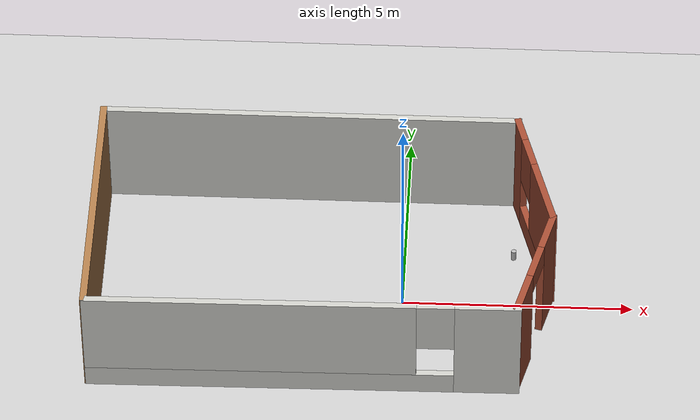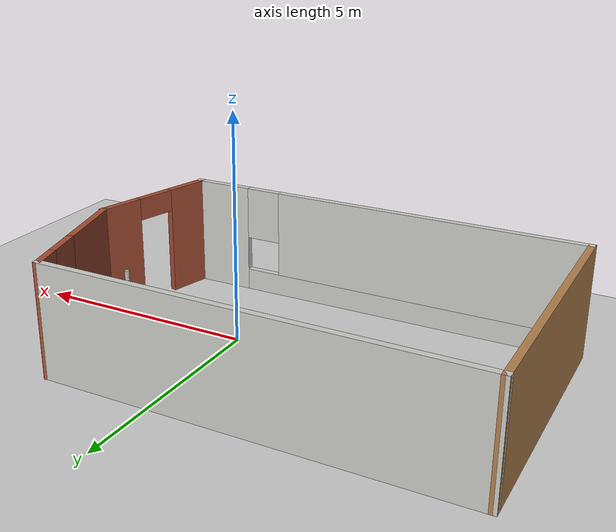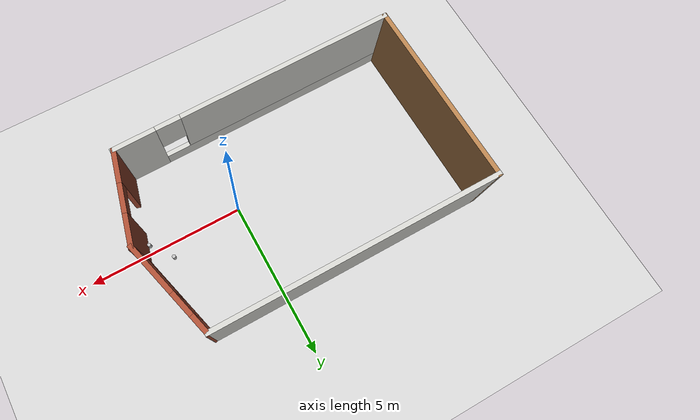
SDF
<sdf version="1.7">
 <world name="default">
  <light name="sun" type="directional">
   <pose>0 0 10 0 -0 0</pose>
   <diffuse>0.8 0.8 0.8 1</diffuse>
   <specular>0.2 0.2 0.2 1</specular>
   <attenuation>
    <range>1000</range>
    <constant>0.9</constant>
    <linear>0.01</linear>
    <quadratic>0.001</quadratic>
   </attenuation>
   <direction>-0.5 0.1 -0.9</direction>
   <spot><inner_angle>0</inner_angle><outer_angle>0</outer_angle><falloff>0</falloff></spot>
  </light>
  <model name="ground_plane">
   <static>1</static>
   <link name="link">
    <collision name="collision">
     <geometry><plane><normal>0 0 1</normal><size>100 100</size></plane></geometry>
     <surface>
      <contact><collide_bitmask>65535</collide_bitmask></contact>
      <friction><ode><mu>100</mu><mu2>50</mu2></ode></friction>
     </surface>
    </collision>
    <visual name="visual">
     <cast_shadows>0</cast_shadows>
     <geometry><plane><normal>0 0 1</normal><size>100 100</size></plane></geometry>
     <material>
      <script><uri>file://media/materials/scripts/gazebo.material</uri><name>Gazebo/Grey</name></script>
     </material>
    </visual>
   </link>
  </model>
  <gravity>0 0 -9.8</gravity>
  <magnetic_field>6e-06 2.3e-05 -4.2e-05</magnetic_field>
  <atmosphere type="adiabatic"/>
  <physics type="ode">
   <max_step_size>0.001</max_step_size>
   <real_time_factor>1</real_time_factor>
   <real_time_update_rate>1000</real_time_update_rate>
  </physics>
  <scene><ambient>0.4 0.4 0.4 1</ambient><background>0.7 0.7 0.7 1</background><shadows>1</shadows></scene>
  <spherical_coordinates>
   <surface_model>EARTH_WGS84</surface_model>
   <latitude_deg>0</latitude_deg>
   <longitude_deg>0</longitude_deg>
   <elevation>0</elevation>
   <heading_deg>0</heading_deg>
  </spherical_coordinates>
  <model name="world_">
   <pose>-1.74023 0.29335 0 0 -0 0</pose>
   <link name="Wall_3">
    <collision name="Wall_3_Collision">
     <geometry><box><size>6.02961 0.15 2.5</size></box></geometry>
     <pose>0 0 1.25 0 -0 0</pose>
    </collision>
    <visual name="Wall_3_Visual">
     <pose>0 0 1.25 0 -0 0</pose>
     <geometry><box><size>6.02961 0.15 2.5</size></box></geometry>
     <material>
      <script><uri>file://media/materials/scripts/gazebo.material</uri><name>Gazebo/Wood</name></script>
      <ambient>1 1 1 1</ambient>
     </material>
     <meta><layer>0</layer></meta>
    </visual>
    <pose>-4.90868 0.002084 0 0 -0 1.5879</pose>
   </link>
   <link name="Wall_5">
    <collision name="Wall_5_Collision">
     <geometry><box><size>9.25 0.15 2.5</size></box></geometry>
     <pose>0 0 1.25 0 -0 0</pose>
    </collision>
    <visual name="Wall_5_Visual">
     <pose>0 0 1.25 0 -0 0</pose>
     <geometry><box><size>9.25 0.15 2.5</size></box></geometry>
     <material>
      <script><uri>file://media/materials/scripts/gazebo.material</uri><name>Gazebo/CeilingTiled</name></script>
      <ambient>1 1 1 1</ambient>
     </material>
     <meta><layer>0</layer></meta>
    </visual>
    <pose>-0.408961 2.94146 0 0 -0 0</pose>
   </link>
   <link name="Wall_6">
    <pose>4.54221 1.44427 0 0 -0 -1.309</pose>
    <visual name="Wall_6_Visual_0">
     <pose>-1.27894 0 1.25 0 -0 0</pose>
     <geometry><box><size>0.692115 0.15 2.5</size></box></geometry>
     <material>
      <script><uri>file://media/materials/scripts/gazebo.material</uri><name>Gazebo/Bricks</name></script>
      <ambient>1 1 1 1</ambient>
     </material>
     <meta><layer>0</layer></meta>
    </visual>
    <collision name="Wall_6_Collision_0">
     <geometry><box><size>0.692115 0.15 2.5</size></box></geometry>
     <pose>-1.27894 0 1.25 0 -0 0</pose>
    </collision>
    <visual name="Wall_6_Visual_1">
     <pose>0.346057 0 0.25 0 -0 0</pose>
     <geometry><box><size>2.55789 0.15 0.5</size></box></geometry>
     <material>
      <script><uri>file://media/materials/scripts/gazebo.material</uri><name>Gazebo/Bricks</name></script>
      <ambient>1 1 1 1</ambient>
     </material>
     <meta><layer>0</layer></meta>
    </visual>
    <collision name="Wall_6_Collision_1">
     <geometry><box><size>2.55789 0.15 0.5</size></box></geometry>
     <pose>0.346057 0 0.25 0 -0 0</pose>
    </collision>
    <visual name="Wall_6_Visual_2">
     <pose>0.746057 0 1.5 0 -0 0</pose>
     <geometry><box><size>1.75788 0.15 2</size></box></geometry>
     <material>
      <script><uri>file://media/materials/scripts/gazebo.material</uri><name>Gazebo/Bricks</name></script>
      <ambient>1 1 1 1</ambient>
     </material>
     <meta><layer>0</layer></meta>
    </visual>
    <collision name="Wall_6_Collision_2">
     <geometry><box><size>1.75788 0.15 2</size></box></geometry>
     <pose>0.746057 0 1.5 0 -0 0</pose>
    </collision>
    <visual name="Wall_6_Visual_3">
     <pose>-0.532885 0 1.9 0 -0 0</pose>
     <geometry><box><size>0.8 0.15 1.2</size></box></geometry>
     <material>
      <script><uri>file://media/materials/scripts/gazebo.material</uri><name>Gazebo/Bricks</name></script>
      <ambient>1 1 1 1</ambient>
     </material>
     <meta><layer>0</layer></meta>
    </visual>
    <collision name="Wall_6_Collision_3">
     <geometry><box><size>0.8 0.15 1.2</size></box></geometry>
     <pose>-0.532885 0 1.9 0 -0 0</pose>
    </collision>
   </link>
   <link name="Wall_7">
    <pose>4.59249 -1.43947 0 0 -0 -1.81865</pose>
    <visual name="Wall_7_Visual_0">
     <pose>-0.98514 0 1.25 0 -0 0</pose>
     <geometry><box><size>1.04026 0.15 2.5</size></box></geometry>
     <material>
      <script><uri>file://media/materials/scripts/gazebo.material</uri><name>Gazebo/Bricks</name></script>
      <ambient>1 1 1 1</ambient>
     </material>
     <meta><layer>0</layer></meta>
    </visual>
    <collision name="Wall_7_Collision_0">
     <geometry><box><size>1.04026 0.15 2.5</size></box></geometry>
     <pose>-0.98514 0 1.25 0 -0 0</pose>
    </collision>
    <visual name="Wall_7_Visual_1">
     <pose>0.97013 0 1.25 0 -0 0</pose>
     <geometry><box><size>1.07028 0.15 2.5</size></box></geometry>
     <material>
      <script><uri>file://media/materials/scripts/gazebo.material</uri><name>Gazebo/Bricks</name></script>
      <ambient>1 1 1 1</ambient>
     </material>
     <meta><layer>0</layer></meta>
    </visual>
    <collision name="Wall_7_Collision_1">
     <geometry><box><size>1.07028 0.15 2.5</size></box></geometry>
     <pose>0.97013 0 1.25 0 -0 0</pose>
    </collision>
    <visual name="Wall_7_Visual_2">
     <pose>-0.01501 0 2.25 0 -0 0</pose>
     <geometry><box><size>0.9 0.15 0.5</size></box></geometry>
     <material>
      <script><uri>file://media/materials/scripts/gazebo.material</uri><name>Gazebo/Bricks</name></script>
      <ambient>1 1 1 1</ambient>
     </material>
     <meta><layer>0</layer></meta>
    </visual>
    <collision name="Wall_7_Collision_2">
     <geometry><box><size>0.9 0.15 0.5</size></box></geometry>
     <pose>-0.01501 0 2.25 0 -0 0</pose>
    </collision>
   </link>
   <link name="Wall_8">
    <pose>-0.28828 -2.90177 0 0 -0 -3.12937</pose>
    <visual name="Wall_8_Visual_0">
     <pose>-3.92301 0 1.25 0 -0 0</pose>
     <geometry><box><size>1.40467 0.15 2.5</size></box></geometry>
     <material>
      <script><uri>file://media/materials/scripts/gazebo.material</uri><name>Gazebo/CeilingTiled</name></script>
      <ambient>1 1 1 1</ambient>
     </material>
     <meta><layer>0</layer></meta>
    </visual>
    <collision name="Wall_8_Collision_0">
     <geometry><box><size>1.40467 0.15 2.5</size></box></geometry>
     <pose>-3.92301 0 1.25 0 -0 0</pose>
    </collision>
    <visual name="Wall_8_Visual_1">
     <pose>0.702333 0 0.25 0 -0 0</pose>
     <geometry><box><size>7.84601 0.15 0.5</size></box></geometry>
     <material>
      <script><uri>file://media/materials/scripts/gazebo.material</uri><name>Gazebo/CeilingTiled</name></script>
      <ambient>1 1 1 1</ambient>
     </material>
     <meta><layer>0</layer></meta>
    </visual>
    <collision name="Wall_8_Collision_1">
     <geometry><box><size>7.84601 0.15 0.5</size></box></geometry>
     <pose>0.702333 0 0.25 0 -0 0</pose>
    </collision>
    <visual name="Wall_8_Visual_2">
     <pose>1.10233 0 1.5 0 -0 0</pose>
     <geometry><box><size>7.04601 0.15 2</size></box></geometry>
     <material>
      <script><uri>file://media/materials/scripts/gazebo.material</uri><name>Gazebo/CeilingTiled</name></script>
      <ambient>1 1 1 1</ambient>
     </material>
     <meta><layer>0</layer></meta>
    </visual>
    <collision name="Wall_8_Collision_2">
     <geometry><box><size>7.04601 0.15 2</size></box></geometry>
     <pose>1.10233 0 1.5 0 -0 0</pose>
    </collision>
    <visual name="Wall_8_Visual_3">
     <pose>-2.82067 0 1.9 0 -0 0</pose>
     <geometry><box><size>0.8 0.15 1.2</size></box></geometry>
     <material>
      <script><uri>file://media/materials/scripts/gazebo.material</uri><name>Gazebo/CeilingTiled</name></script>
      <ambient>1 1 1 1</ambient>
     </material>
     <meta><layer>0</layer></meta>
    </visual>
    <collision name="Wall_8_Collision_3">
     <geometry><box><size>0.8 0.15 1.2</size></box></geometry>
     <pose>-2.82067 0 1.9 0 -0 0</pose>
    </collision>
   </link>
   <static>1</static>
  </model>
  <model name="beer">
   <link name="link">
    <pose>0 0 0.115 0 -0 0</pose>
    <inertial>
     <mass>0.39</mass>
     <inertia><ixx>0.00058</ixx><ixy>0</ixy><ixz>0</ixz><iyy>0.00058</iyy><iyz>0</iyz><izz>0.00019</izz></inertia>
    </inertial>
    <collision name="collision">
     <geometry><cylinder><radius>0.055</radius><length>0.23</length></cylinder></geometry>
    </collision>
    <visual name="visual">
     <geometry><cylinder><radius>0.055</radius><length>0.23</length></cylinder></geometry>
     <material>
      <script>
       <uri>model://beer/materials/scripts</uri>
       <uri>model://beer/materials/textures</uri>
       <name>Beer/Diffuse</name>
      </script>
     </material>
    </visual>
   </link>
   <pose>2.38592 0.646891 0.810465 0 -0 0</pose>
  </model>
  <model name="beer_0">
   <link name="link">
    <pose>0 0 0.115 0 -0 0</pose>
    <inertial>
     <mass>0.39</mass>
     <inertia><ixx>0.00058</ixx><ixy>0</ixy><ixz>0</ixz><iyy>0.00058</iyy><iyz>0</iyz><izz>0.00019</izz></inertia>
    </inertial>
    <collision name="collision">
     <geometry><cylinder><radius>0.055</radius><length>0.23</length></cylinder></geometry>
    </collision>
    <visual name="visual">
     <geometry><cylinder><radius>0.055</radius><length>0.23</length></cylinder></geometry>
     <material>
      <script>
       <uri>model://beer/materials/scripts</uri>
       <uri>model://beer/materials/textures</uri>
       <name>Beer/Diffuse</name>
      </script>
     </material>
    </visual>
   </link>
   <pose>2.87839 -0.016797 0.790851 0 -0 0</pose>
  </model>
  <light name="user_spot_light_0" type="spot">
   <pose>-3.12774 0.752954 1 0 -0 0</pose>
   <diffuse>0.5 0.5 0.5 1</diffuse>
   <specular>0.1 0.1 0.1 1</specular>
   <direction>0 0 -1</direction>
   <attenuation>
    <range>20</range>
    <constant>0.5</constant>
    <linear>0.01</linear>
    <quadratic>0.001</quadratic>
   </attenuation>
   <cast_shadows>0</cast_shadows>
   <spot><inner_angle>0.6</inner_angle><outer_angle>1</outer_angle><falloff>1</falloff></spot>
  </light>
 </world>
</sdf>
